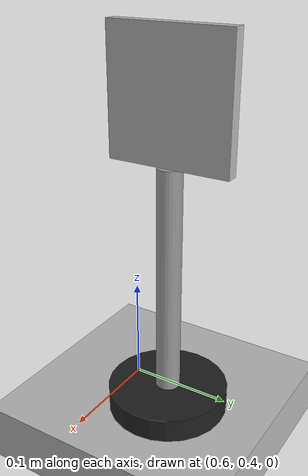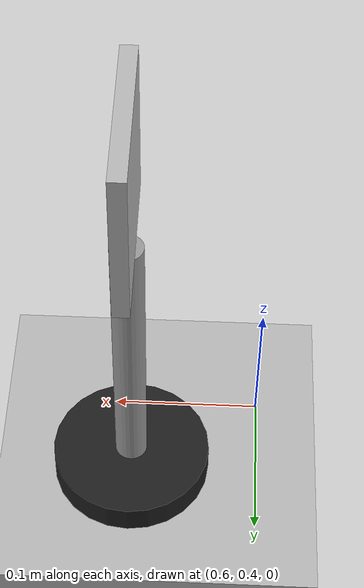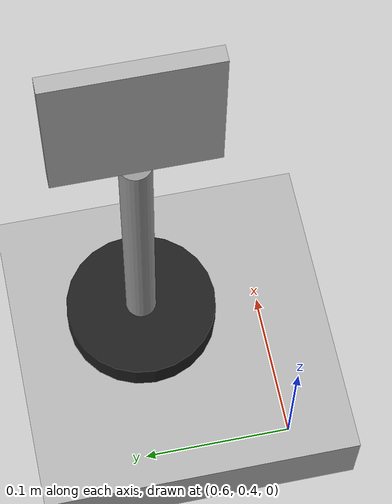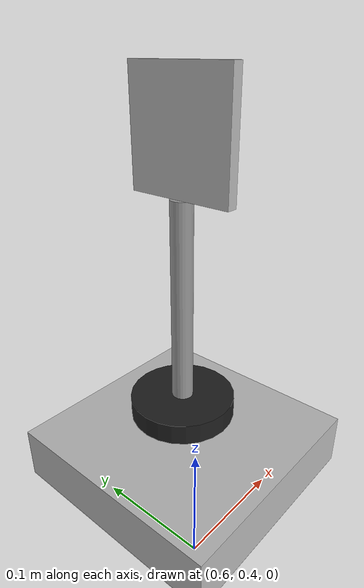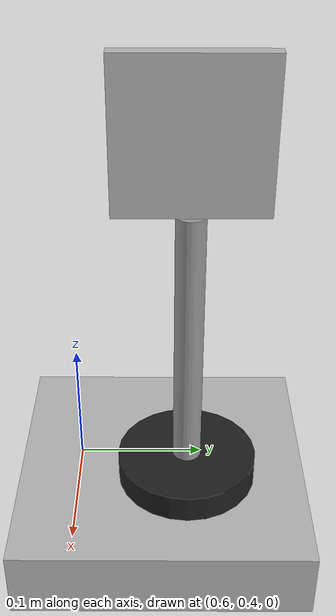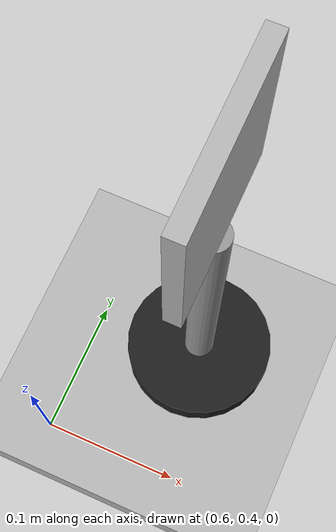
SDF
<sdf version="1.7">
 <world name="default">
  <light name="sun" type="directional">
   <pose>0 0 10 0 -0 0</pose>
   <diffuse>0.8 0.8 0.8 1</diffuse>
   <specular>0.2 0.2 0.2 1</specular>
   <attenuation>
    <range>1000</range>
    <constant>0.9</constant>
    <linear>0.01</linear>
    <quadratic>0.001</quadratic>
   </attenuation>
   <direction>-0.5 0.1 -0.9</direction>
   <spot><inner_angle>0</inner_angle><outer_angle>0</outer_angle><falloff>0</falloff></spot>
  </light>
  <model name="ground_plane">
   <static>1</static>
   <link name="link">
    <collision name="collision">
     <geometry><plane><normal>0 0 1</normal><size>100 100</size></plane></geometry>
     <surface>
      <contact><collide_bitmask>65535</collide_bitmask></contact>
      <friction><ode><mu>100</mu><mu2>50</mu2></ode></friction>
     </surface>
    </collision>
    <visual name="visual">
     <cast_shadows>0</cast_shadows>
     <geometry><plane><normal>0 0 1</normal><size>100 100</size></plane></geometry>
     <material>
      <script><uri>file://media/materials/scripts/gazebo.material</uri><name>Gazebo/Grey</name></script>
     </material>
    </visual>
   </link>
  </model>
  <gravity>0 0 -9.8</gravity>
  <magnetic_field>6e-06 2.3e-05 -4.2e-05</magnetic_field>
  <atmosphere type="adiabatic"/>
  <physics type="ode">
   <max_step_size>0.001</max_step_size>
   <real_time_factor>1</real_time_factor>
   <real_time_update_rate>1000</real_time_update_rate>
  </physics>
  <scene><ambient>0.4 0.4 0.4 1</ambient><background>0.7 0.7 0.7 1</background><shadows>1</shadows></scene>
  <spherical_coordinates>
   <surface_model>EARTH_WGS84</surface_model>
   <latitude_deg>0</latitude_deg>
   <longitude_deg>0</longitude_deg>
   <elevation>0</elevation>
   <heading_deg>0</heading_deg>
  </spherical_coordinates>
  <model name="road_cross">
   <pose>0.052468 0.02333 0 0 -0 0</pose>
   <link name="Wall_0">
    <collision name="Wall_0_Collision">
     <geometry><box><size>4 4 0.05</size></box></geometry>
     <pose>0 0 0.025 0 -0 0</pose>
    </collision>
    <visual name="Wall_0_Visual">
     <pose>0 0 0.025 0 -0 0</pose>
     <geometry><box><size>4 4 0.05</size></box></geometry>
     <material>
      <script>
       <uri>model://road_cross/materials/scripts</uri>
       <uri>model://road_cross/materials/textures</uri>
       <name>road_cross/Diffuse</name>
      </script>
     </material>
     <meta><layer>0</layer></meta>
    </visual>
   </link>
   <static>1</static>
  </model>
  <model name="left">
   <link name="link_0">
    <inertial>
     <mass>0.00689886</mass>
     <inertia>
      <ixx>4.77026e-05</ixx>
      <ixy>0</ixy>
      <ixz>0</ixz>
      <iyy>4.77026e-05</iyy>
      <iyz>0</iyz>
      <izz>9.04191e-05</izz>
     </inertia>
     <pose>0 0 0.1 0 -0 0</pose>
    </inertial>
    <visual name="visual">
     <pose>0 0 0.1 0 -0 0</pose>
     <geometry><cylinder><radius>0.05</radius><length>0.02</length></cylinder></geometry>
     <material>
      <lighting>1</lighting>
      <script><uri>file://media/materials/scripts/gazebo.material</uri><name>Gazebo/Black</name></script>
      <shader type="pixel"/>
      <emissive>0 0 0 1</emissive>
     </material>
    </visual>
    <collision name="collision">
     <pose>0 0 0.1 0 -0 0</pose>
     <geometry><cylinder><radius>0.05</radius><length>0.02</length></cylinder></geometry>
     <surface>
      <friction>
       <ode><mu>1</mu><mu2>1</mu2><fdir1>0 0 0</fdir1><slip1>0</slip1><slip2>0</slip2></ode>
       <torsional>
        <coefficient>1</coefficient>
        <patch_radius>0</patch_radius>
        <surface_radius>0</surface_radius>
        <use_patch_radius>1</use_patch_radius>
        <ode><slip>0</slip></ode>
       </torsional>
      </friction>
      <bounce><restitution_coefficient>0</restitution_coefficient><threshold>1e+06</threshold></bounce>
      <contact>
       <collide_without_contact>0</collide_without_contact>
       <collide_without_contact_bitmask>1</collide_without_contact_bitmask>
       <collide_bitmask>1</collide_bitmask>
       <ode>
        <soft_cfm>0</soft_cfm>
        <soft_erp>0.2</soft_erp>
        <kp>1e+13</kp>
        <kd>1</kd>
        <max_vel>0.01</max_vel>
        <min_depth>0</min_depth>
       </ode>
       <bullet>
        <split_impulse>1</split_impulse>
        <split_impulse_penetration_threshold>-0.01</split_impulse_penetration_threshold>
        <soft_cfm>0</soft_cfm>
        <soft_erp>0.2</soft_erp>
        <kp>1e+13</kp>
        <kd>1</kd>
       </bullet>
      </contact>
     </surface>
    </collision>
   </link>
   <link name="link_1">
    <inertial>
     <mass>0.00371732</mass>
     <inertia>
      <ixx>8.63892e-05</ixx>
      <ixy>0</ixy>
      <ixz>0</ixz>
      <iyy>8.63892e-05</iyy>
      <iyz>0</iyz>
      <izz>3.30867e-06</izz>
     </inertia>
    </inertial>
    <pose>0 0 0.1 0 -0 0</pose>
    <visual name="visual">
     <pose>0 0 0.1 0 -0 0</pose>
     <geometry><cylinder><radius>0.01</radius><length>0.2</length></cylinder></geometry>
     <material>
      <lighting>1</lighting>
      <script><uri>file://media/materials/scripts/gazebo.material</uri><name>Gazebo/Grey</name></script>
      <shader type="pixel"/>
      <emissive>0 0 0 1</emissive>
     </material>
    </visual>
    <collision name="collision">
     <pose>0 0 0.1 0 -0 0</pose>
     <geometry><cylinder><radius>0.01</radius><length>0.2</length></cylinder></geometry>
     <surface>
      <friction>
       <ode><mu>1</mu><mu2>1</mu2><fdir1>0 0 0</fdir1><slip1>0</slip1><slip2>0</slip2></ode>
       <torsional>
        <coefficient>1</coefficient>
        <patch_radius>0</patch_radius>
        <surface_radius>0</surface_radius>
        <use_patch_radius>1</use_patch_radius>
        <ode><slip>0</slip></ode>
       </torsional>
      </friction>
      <bounce><restitution_coefficient>0</restitution_coefficient><threshold>1e+06</threshold></bounce>
      <contact>
       <collide_without_contact>0</collide_without_contact>
       <collide_without_contact_bitmask>1</collide_without_contact_bitmask>
       <collide_bitmask>1</collide_bitmask>
       <ode>
        <soft_cfm>0</soft_cfm>
        <soft_erp>0.2</soft_erp>
        <kp>1e+13</kp>
        <kd>1</kd>
        <max_vel>0.01</max_vel>
        <min_depth>0</min_depth>
       </ode>
       <bullet>
        <split_impulse>1</split_impulse>
        <split_impulse_penetration_threshold>-0.01</split_impulse_penetration_threshold>
        <soft_cfm>0</soft_cfm>
        <soft_erp>0.2</soft_erp>
        <kp>1e+13</kp>
        <kd>1</kd>
       </bullet>
      </contact>
     </surface>
    </collision>
   </link>
   <link name="link_2">
    <inertial>
     <mass>0.000803864</mass>
     <inertia>
      <ixx>0.000152874</ixx>
      <ixy>0</ixy>
      <ixz>0</ixz>
      <iyy>7.89053e-05</iyy>
      <iyz>0</iyz>
      <izz>8.06245e-05</izz>
     </inertia>
    </inertial>
    <pose>0 0 0.175 0 -0 0</pose>
    <visual name="visual">
     <pose>0 0 0.175 0 -0 0</pose>
     <geometry><box><size>0.01 0.1 0.1</size></box></geometry>
     <material>
      <script>
       <uri>model://left/materials/scripts</uri>
       <uri>model://left/materials/textures</uri>
       <name>left/Diffuse</name>
      </script>
     </material>
    </visual>
    <collision name="collision">
     <pose>0 0 0.175 0 -0 0</pose>
     <geometry><box><size>0.01 0.1 0.1</size></box></geometry>
     <surface>
      <friction>
       <ode><mu>1</mu><mu2>1</mu2><fdir1>0 0 0</fdir1><slip1>0</slip1><slip2>0</slip2></ode>
       <torsional>
        <coefficient>1</coefficient>
        <patch_radius>0</patch_radius>
        <surface_radius>0</surface_radius>
        <use_patch_radius>1</use_patch_radius>
        <ode><slip>0</slip></ode>
       </torsional>
      </friction>
      <bounce><restitution_coefficient>0</restitution_coefficient><threshold>1e+06</threshold></bounce>
      <contact>
       <collide_without_contact>0</collide_without_contact>
       <collide_without_contact_bitmask>1</collide_without_contact_bitmask>
       <collide_bitmask>1</collide_bitmask>
       <ode>
        <soft_cfm>0</soft_cfm>
        <soft_erp>0.2</soft_erp>
        <kp>1e+13</kp>
        <kd>1</kd>
        <max_vel>0.01</max_vel>
        <min_depth>0</min_depth>
       </ode>
       <bullet>
        <split_impulse>1</split_impulse>
        <split_impulse_penetration_threshold>-0.01</split_impulse_penetration_threshold>
        <soft_cfm>0</soft_cfm>
        <soft_erp>0.2</soft_erp>
        <kp>1e+13</kp>
        <kd>1</kd>
       </bullet>
      </contact>
     </surface>
    </collision>
   </link>
   <joint name="link_0_JOINT_0" type="fixed">
    <parent>link_0</parent>
    <child>link_1</child>
    <physics>
     <ode><limit><cfm>0</cfm><erp>0.2</erp></limit><suspension><cfm>0</cfm><erp>0.2</erp></suspension></ode>
    </physics>
   </joint>
   <joint name="link_0_JOINT_1" type="fixed">
    <parent>link_0</parent>
    <child>link_2</child>
    <physics>
     <ode><limit><cfm>0</cfm><erp>0.2</erp></limit><suspension><cfm>0</cfm><erp>0.2</erp></suspension></ode>
    </physics>
   </joint>
   <static>0</static>
   <pose>0.683257 0.486191 -0.039996 3.8e-05 6.8e-05 -2e-06</pose>
  </model>
 </world>
</sdf>
